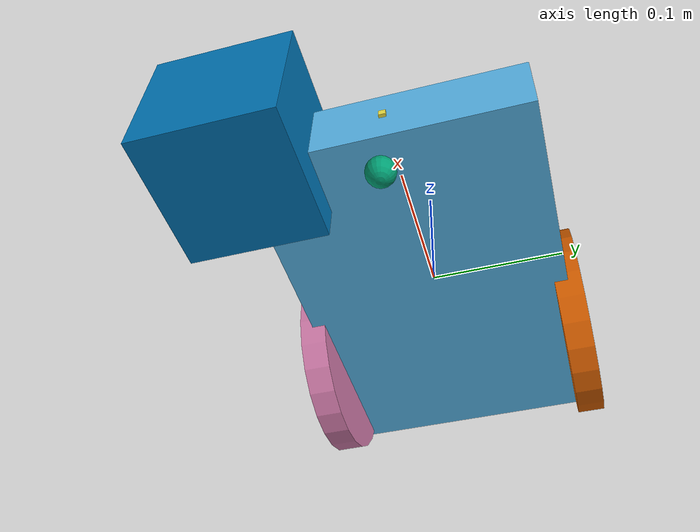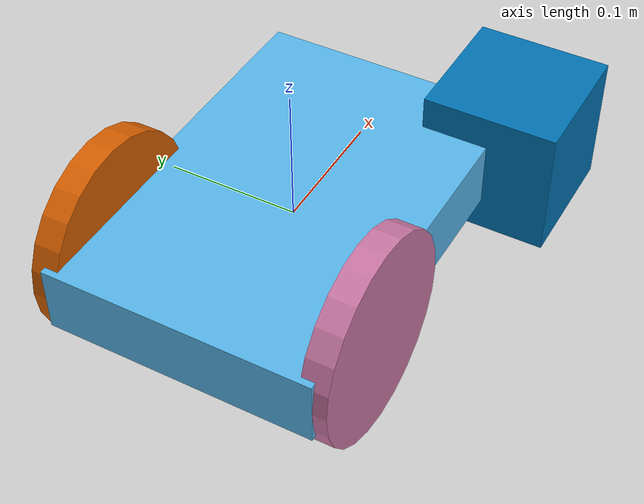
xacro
<?xml version="1.0"?>
<robot xmlns:xacro="http://www.ros.org/wiki/xacro" name="jedgar">
    <xacro:include filename="$(find jedgar_description)/urdf/jedgar.gazebo" />

    <!-- TODO Measure Jedgar -->
    <xacro:property name="BASE_LENGTH" value="0.300" />
    <xacro:property name="BASE_HEIGHT" value="0.050" />
    <xacro:property name="BASE_MASS" value="0.4" />

    <xacro:property name="WHEEL_THICKNESS" value="0.020" />
    <xacro:property name="WHEEL_RADIUS" value="0.075" />

    <xacro:property name="WHEEL_TO_BACK" value="${WHEEL_RADIUS}" />
    <xacro:property name="WHEELBASE" value="0.200" />

    <xacro:property name="WHEEL_MASS" value="0.1" />
    <xacro:property name="WHEEL_MOMENT" value="${WHEEL_MASS/12*(3*WHEEL_RADIUS**2+WHEEL_THICKNESS**2)}" />

    <xacro:property name="camera_link" value="0.005" />
    <xacro:property name="laser_link" value="0.1" />

    <xacro:macro name="wheel" params="name">
        <link name="${name}">
            <visual>
                <origin rpy="${pi/2} 0 0"/>
                <geometry>
                    <cylinder length="${WHEEL_THICKNESS}" radius="${WHEEL_RADIUS}"/>
                </geometry>
            </visual>
            <collision>
                <origin rpy="${pi/2} 0 0"/>
                <geometry>
                    <cylinder length="${WHEEL_THICKNESS}" radius="${WHEEL_RADIUS}"/>
                </geometry>
            </collision>
            <inertial>
                <mass value="${WHEEL_MASS}"/>
                <inertia ixx="${WHEEL_MOMENT}" iyy="${WHEEL_MOMENT}" izz="${WHEEL_MOMENT}" ixy="0" ixz="0" iyz="0"/>
            </inertial>
        </link>
    </xacro:macro>

    <link name="base_footprint"/>

    <link name="base_link">
        <visual>
            <geometry>
                <box size="${BASE_LENGTH} ${WHEELBASE} ${BASE_HEIGHT}"/>
            </geometry>
        </visual>
        <collision>
            <geometry>
                <box size="${BASE_LENGTH} ${WHEELBASE} ${BASE_HEIGHT}"/>
            </geometry>
        </collision>
        <inertial>
            <mass value="${BASE_MASS}"/>
            <inertia
                ixx="${BASE_MASS/12*(BASE_HEIGHT**2+BASE_LENGTH**2)}"
                iyy="${BASE_MASS/12*(WHEELBASE**2+BASE_LENGTH**2)}"
                izz="${BASE_MASS/12*(WHEELBASE**2+BASE_HEIGHT**2)}"
                ixy="0" ixz="0" iyz="0"/>
        </inertial>
    </link>

    <link name="caster_link">
        <visual>
            <geometry>
                <sphere radius="0.01"/>
            </geometry>
        </visual>
        <collision>
            <geometry>
                <sphere radius="0.01"/>
            </geometry>
        </collision>
        <inertial>
            <mass value="0"/>
            <inertia
                ixx="0" iyy="0" izz="0"
                ixy="0" ixz="0" iyz="0"/>
        </inertial>
    </link>

	<link name="camera_link">
		<collision>
			<origin xyz="0 0 0" rpy="0 0 0"/>
			<geometry>
				<box size="${camera_link} ${camera_link} ${camera_link}"/>
			</geometry>
		</collision>

		<visual>
			<origin xyz="0 0 0" rpy="0 0 0"/>
			<geometry>
		<box size="${camera_link} ${camera_link} ${camera_link}"/>
			</geometry>
		</visual>

		<inertial>
			<mass value="1e-5" />
			<origin xyz="0 0 0" rpy="0 0 0"/>
			<inertia ixx="1e-6" ixy="0" ixz="0" iyy="1e-6" iyz="0" izz="1e-6" />
		</inertial>
	</link>

    <joint name="camera_joint" type="fixed">
        <parent link="base_link"/>
        <child link="camera_link"/>
        <origin xyz="${BASE_LENGTH/2} 0 0"/>
    </joint>

	<link name="laser_link">
		<collision>
			<origin xyz="0 0 0" rpy="0 0 0"/>
			<geometry>
				<box size="${laser_link} ${laser_link} ${laser_link}"/>
			</geometry>
		</collision>

		<visual>
			<origin xyz="0 0 0" rpy="0 0 0"/>
			<geometry>
		<box size="${laser_link} ${laser_link} ${laser_link}"/>
			</geometry>
		</visual>

		<inertial>
			<mass value="1e-5" />
			<origin xyz="0 0 0" rpy="0 0 0"/>
			<inertia ixx="1e-6" ixy="0" ixz="0" iyy="1e-6" iyz="0" izz="1e-6" />
		</inertial>
	</link>

    <joint name="laser_joint" type="fixed">
        <parent link="base_link"/>
        <child link="laser_link"/>
        <origin xyz="${BASE_LENGTH/2} ${-WHEELBASE/2} 0"
				rpy="0 0 0"/>
    </joint>

    <xacro:wheel name="left_wheel"/>
    <xacro:wheel name="right_wheel"/>

    <joint name="base_footprint_joint" type="fixed">
        <parent link="base_link"/>
        <child link="base_footprint"/>
        <origin xyz="0 0 ${-WHEEL_RADIUS}"/>
    </joint>

    <joint name="caster_joint" type="fixed">
        <parent link="base_link"/>
        <child link="caster_link"/>
        <origin xyz="${BASE_LENGTH/2} 0 ${-WHEEL_RADIUS + 0.01}"/>
    </joint>

    <joint name="left_wheel_joint" type="continuous">
        <parent link="base_link"/>
        <child link="left_wheel"/>
        <axis xyz="0 1 0"/>
        <origin xyz="${-BASE_LENGTH/2+WHEEL_TO_BACK} ${WHEELBASE/2} 0"/>
    </joint>

    <transmission name="left_wheel_transmission">
        <type>transmission_interface/SimpleTransmission</type>
        <joint name="left_wheel_joint">
            <hardwareInterface>hardware_interface/VelocityJointInterface</hardwareInterface>
        </joint>
        <actuator name="left_motor">
            <hardwareInterface>hardware_interface/VelocityJointInterface</hardwareInterface>
            <mechanicalReduction>1</mechanicalReduction>
        </actuator>
    </transmission>

    <joint name="right_wheel_joint" type="continuous">
        <parent link="base_link"/>
        <child link="right_wheel"/>
        <axis xyz="0 1 0"/>
        <origin xyz="${-BASE_LENGTH/2+WHEEL_TO_BACK} ${-WHEELBASE/2} 0"/>
    </joint>

    <transmission name="right_wheel_transmission">
        <type>transmission_interface/SimpleTransmission</type>
        <joint name="right_wheel_joint">
            <hardwareInterface>hardware_interface/VelocityJointInterface</hardwareInterface>
        </joint>
        <actuator name="right_motor">
            <hardwareInterface>hardware_interface/VelocityJointInterface</hardwareInterface>
            <mechanicalReduction>1</mechanicalReduction>
        </actuator>
    </transmission>
</robot>
